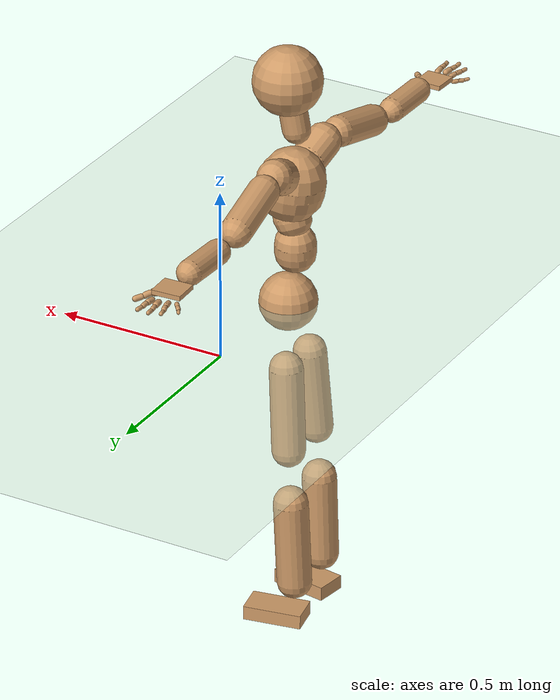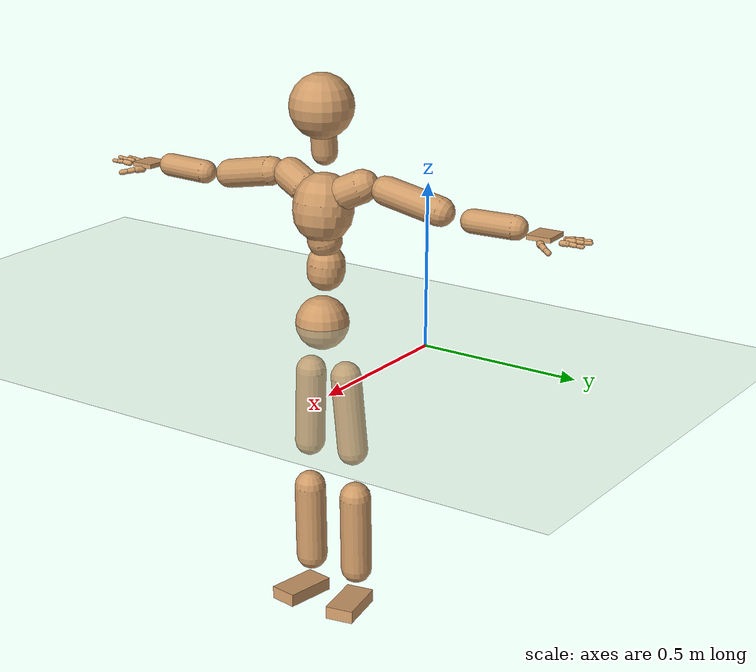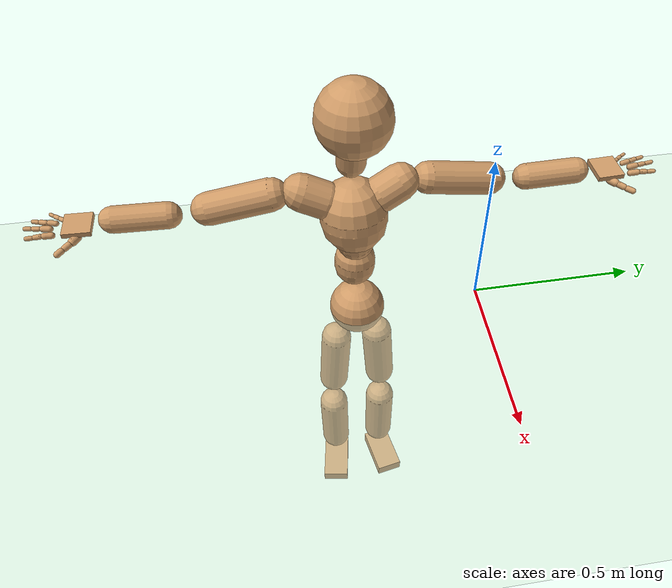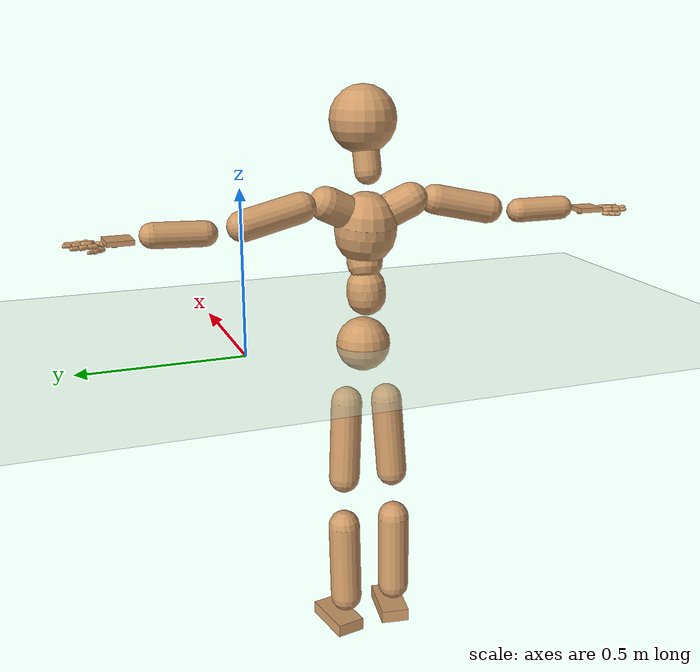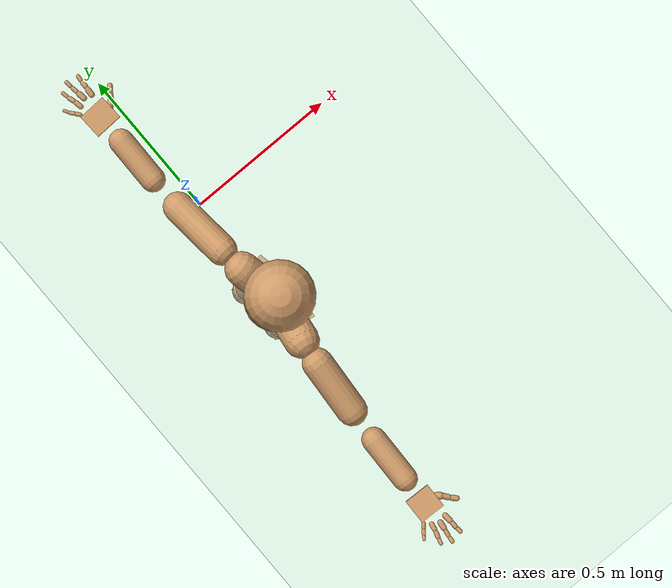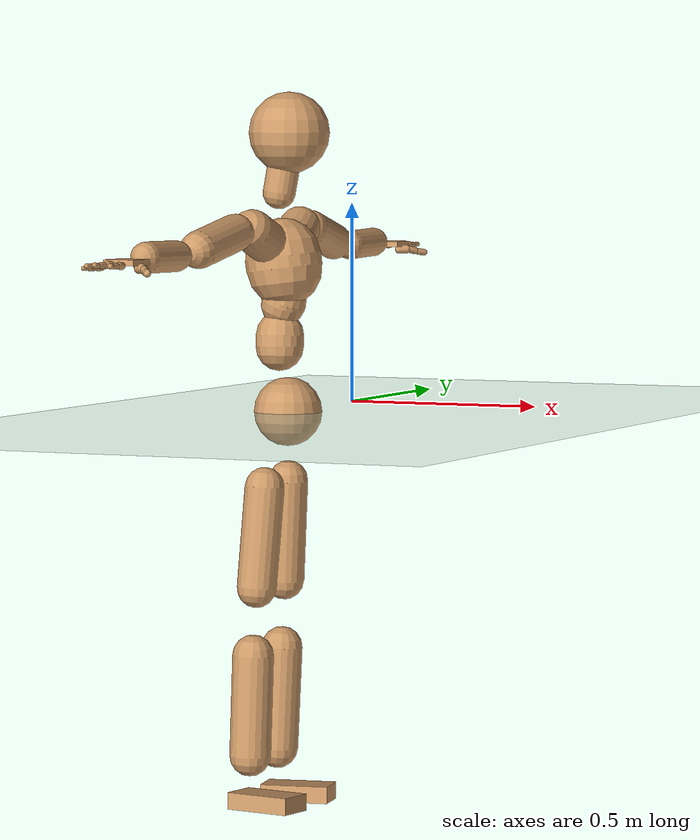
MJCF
<mujoco model="humanoid">
  <compiler coordinate="local" angle="radian"/>
  <default>
    <joint damping="0.0" armature="0.01" stiffness="0.0" limited="true"/>
    <geom conaffinity="1" condim="3" contype="7" margin="0.001" rgba="0.8 0.6 .4 1"/>
  </default>
  <asset>
    <texture type="skybox" builtin="gradient" rgb1=".4 .5 .6" rgb2="0 0 0" width="100" height="100"/>
    <texture builtin="flat" height="1278" mark="cross" markrgb="1 1 1" name="texgeom" random="0.01" rgb1="0.8 0.6 0.4" rgb2="0.8 0.6 0.4" type="cube" width="127"/>
    <texture builtin="checker" height="100" name="texplane" rgb1="0 0 0" rgb2="0.8 0.8 0.8" type="2d" width="100"/>
    <material name="MatPlane" reflectance="0.5" shininess="1" specular="1" texrepeat="60 60" texture="texplane"/>
    <material name="geom" texture="texgeom" texuniform="true"/>
  </asset>
  <worldbody>
    <light cutoff="100" diffuse="1 1 1" dir="-0 0 -1.3" directional="true" exponent="1" pos="0 0 1.3" specular=".1 .1 .1"/>
    <geom conaffinity="1" condim="3" name="floor" pos="0 0 0" rgba="0.8 0.9 0.8 1" size="100 100 .2" type="plane" material="MatPlane"/>
    <body name="Pelvis" pos="0.0001 -0.3766 -0.0013">
      <freejoint name="Pelvis"/>
      <geom type="sphere" contype="1" conaffinity="1" density="500" size="0.0842" pos="0.0000 0.0000 0.0000" name="Pelvis"/>
      <body name="L_Hip" pos="-0.026 0.0622 -0.0916">
        <joint name="L_Hip_x" type="hinge" pos="0 0 0" axis="1 0 0" stiffness="800" damping="80" armature="0.02" range="-180.0000 180.0000"/>
        <joint name="L_Hip_y" type="hinge" pos="0 0 0" axis="0 1 0" stiffness="800" damping="80" armature="0.02" range="-180.0000 180.0000"/>
        <joint name="L_Hip_z" type="hinge" pos="0 0 0" axis="0 0 1" stiffness="800" damping="80" armature="0.02" range="-180.0000 180.0000"/>
        <geom type="capsule" contype="1" conaffinity="1" density="500" fromto="-0.0057 0.0049 -0.0835 -0.0229 0.0194 -0.3339" size="0.0487" name="L_Hip"/>
        <body name="L_Knee" pos="-0.0286 0.0243 -0.4174">
          <joint name="L_Knee_x" type="hinge" pos="0 0 0" axis="1 0 0" stiffness="800" damping="80" armature="0.02" range="-180.0000 180.0000"/>
          <joint name="L_Knee_y" type="hinge" pos="0 0 0" axis="0 1 0" stiffness="800" damping="80" armature="0.02" range="-180.0000 180.0000"/>
          <joint name="L_Knee_z" type="hinge" pos="0 0 0" axis="0 0 1" stiffness="800" damping="80" armature="0.02" range="-180.0000 180.0000"/>
          <geom type="capsule" contype="1" conaffinity="1" density="500" fromto="-0.0037 -0.0008 -0.0845 -0.0149 -0.0032 -0.3381" size="0.0507" name="L_Knee"/>
          <body name="L_Ankle" pos="-0.0186 -0.0041 -0.4226">
            <joint name="L_Ankle_x" type="hinge" pos="0 0 0" axis="1 0 0" stiffness="800" damping="80" armature="0.02" range="-180.0000 180.0000"/>
            <joint name="L_Ankle_y" type="hinge" pos="0 0 0" axis="0 1 0" stiffness="800" damping="80" armature="0.02" range="-180.0000 180.0000"/>
            <joint name="L_Ankle_z" type="hinge" pos="0 0 0" axis="0 0 1" stiffness="800" damping="80" armature="0.02" range="-180.0000 180.0000"/>
            <geom type="box" contype="1" conaffinity="1" density="500" pos="0.0557 0.0104 -0.0244" size="0.0858 0.0456 0.0209" quat="0.9957 0.0000 0.0000 0.0921" name="L_Ankle"/>
            <body name="L_Toe" pos="0.1114 0.0208 -0.0488">
              <joint name="L_Toe_x" type="hinge" pos="0 0 0" axis="1 0 0" stiffness="500" damping="50" armature="0.02" range="-180.0000 180.0000"/>
              <joint name="L_Toe_y" type="hinge" pos="0 0 0" axis="0 1 0" stiffness="500" damping="50" armature="0.02" range="-180.0000 180.0000"/>
              <joint name="L_Toe_z" type="hinge" pos="0 0 0" axis="0 0 1" stiffness="500" damping="50" armature="0.02" range="-180.0000 180.0000"/>
              <geom type="box" contype="1" conaffinity="1" density="500" pos="0.0000 0.0000 0.0241" size="0.0009 0.0023 0.001" quat="0.9951 0.0000 0.0000 0.0990" name="L_Toe"/>
            </body>
          </body>
        </body>
      </body>
      <body name="R_Hip" pos="-0.0274 -0.0614 -0.099">
        <joint name="R_Hip_x" type="hinge" pos="0 0 0" axis="1 0 0" stiffness="800" damping="80" armature="0.02" range="-180.0000 180.0000"/>
        <joint name="R_Hip_y" type="hinge" pos="0 0 0" axis="0 1 0" stiffness="800" damping="80" armature="0.02" range="-180.0000 180.0000"/>
        <joint name="R_Hip_z" type="hinge" pos="0 0 0" axis="0 0 1" stiffness="800" damping="80" armature="0.02" range="-180.0000 180.0000"/>
        <geom type="capsule" contype="1" conaffinity="1" density="500" fromto="-0.0046 -0.0054 -0.0825 -0.0186 -0.0217 -0.3300" size="0.0484" name="R_Hip"/>
        <body name="R_Knee" pos="-0.0232 -0.0271 -0.4126">
          <joint name="R_Knee_x" type="hinge" pos="0 0 0" axis="1 0 0" stiffness="800" damping="80" armature="0.02" range="-180.0000 180.0000"/>
          <joint name="R_Knee_y" type="hinge" pos="0 0 0" axis="0 1 0" stiffness="800" damping="80" armature="0.02" range="-180.0000 180.0000"/>
          <joint name="R_Knee_z" type="hinge" pos="0 0 0" axis="0 0 1" stiffness="800" damping="80" armature="0.02" range="-180.0000 180.0000"/>
          <geom type="capsule" contype="1" conaffinity="1" density="500" fromto="-0.0028 -0.0001 -0.0828 -0.0112 -0.0003 -0.3311" size="0.0507" name="R_Knee"/>
          <body name="R_Ankle" pos="-0.014 -0.0004 -0.4138">
            <joint name="R_Ankle_x" type="hinge" pos="0 0 0" axis="1 0 0" stiffness="800" damping="80" armature="0.02" range="-180.0000 180.0000"/>
            <joint name="R_Ankle_y" type="hinge" pos="0 0 0" axis="0 1 0" stiffness="800" damping="80" armature="0.02" range="-180.0000 180.0000"/>
            <joint name="R_Ankle_z" type="hinge" pos="0 0 0" axis="0 0 1" stiffness="800" damping="80" armature="0.02" range="-180.0000 180.0000"/>
            <geom type="box" contype="1" conaffinity="1" density="500" pos="0.0524 -0.0083 -0.0264" size="0.0858 0.0456 0.0209" quat="0.9969 0.0000 0.0000 -0.0786" name="R_Ankle"/>
            <body name="R_Toe" pos="0.1048 -0.0166 -0.0528">
              <joint name="R_Toe_x" type="hinge" pos="0 0 0" axis="1 0 0" stiffness="500" damping="50" armature="0.02" range="-180.0000 180.0000"/>
              <joint name="R_Toe_y" type="hinge" pos="0 0 0" axis="0 1 0" stiffness="500" damping="50" armature="0.02" range="-180.0000 180.0000"/>
              <joint name="R_Toe_z" type="hinge" pos="0 0 0" axis="0 0 1" stiffness="500" damping="50" armature="0.02" range="-180.0000 180.0000"/>
              <geom type="box" contype="1" conaffinity="1" density="500" pos="0.0000 0.0000 0.0261" size="0.0009 0.0023 0.001" quat="0.9977 0.0000 0.0000 -0.0680" name="R_Toe"/>
            </body>
          </body>
        </body>
      </body>
      <body name="Torso" pos="-0.0213 -0.0045 0.104">
        <joint name="Torso_x" type="hinge" pos="0 0 0" axis="1 0 0" stiffness="1000" damping="100" armature="0.02" range="-180.0000 180.0000"/>
        <joint name="Torso_y" type="hinge" pos="0 0 0" axis="0 1 0" stiffness="1000" damping="100" armature="0.02" range="-180.0000 180.0000"/>
        <joint name="Torso_z" type="hinge" pos="0 0 0" axis="0 0 1" stiffness="1000" damping="100" armature="0.02" range="-180.0000 180.0000"/>
        <geom type="capsule" contype="1" conaffinity="1" density="500" fromto="-0.0006 0.0043 0.0822 -0.0004 0.0029 0.0548" size="0.0596" name="Torso"/>
        <body name="Spine" pos="-0.001 0.0072 0.1371">
          <joint name="Spine_x" type="hinge" pos="0 0 0" axis="1 0 0" stiffness="1000" damping="100" armature="0.02" range="-180.0000 180.0000"/>
          <joint name="Spine_y" type="hinge" pos="0 0 0" axis="0 1 0" stiffness="1000" damping="100" armature="0.02" range="-180.0000 180.0000"/>
          <joint name="Spine_z" type="hinge" pos="0 0 0" axis="0 0 1" stiffness="1000" damping="100" armature="0.02" range="-180.0000 180.0000"/>
          <geom type="capsule" contype="1" conaffinity="1" density="500" fromto="0.0125 -0.0021 0.0306 0.0084 -0.0014 0.0204" size="0.0543" name="Spine"/>
          <body name="Chest" pos="0.0209 -0.0035 0.051">
            <joint name="Chest_x" type="hinge" pos="0 0 0" axis="1 0 0" stiffness="1000" damping="100" armature="0.02" range="-180.0000 180.0000"/>
            <joint name="Chest_y" type="hinge" pos="0 0 0" axis="0 1 0" stiffness="1000" damping="100" armature="0.02" range="-180.0000 180.0000"/>
            <joint name="Chest_z" type="hinge" pos="0 0 0" axis="0 0 1" stiffness="1000" damping="100" armature="0.02" range="-180.0000 180.0000"/>
            <geom type="capsule" contype="1" conaffinity="1" density="500" fromto="-0.0109 -0.0015 0.0880 -0.0072 -0.0010 0.0587" size="0.0941" name="Chest"/>
            <body name="Neck" pos="-0.0259 -0.0053 0.2064">
              <joint name="Neck_x" type="hinge" pos="0 0 0" axis="1 0 0" stiffness="500" damping="50" armature="0.02" range="-180.0000 180.0000"/>
              <joint name="Neck_y" type="hinge" pos="0 0 0" axis="0 1 0" stiffness="500" damping="50" armature="0.02" range="-180.0000 180.0000"/>
              <joint name="Neck_z" type="hinge" pos="0 0 0" axis="0 0 1" stiffness="500" damping="50" armature="0.02" range="-180.0000 180.0000"/>
              <geom type="capsule" contype="1" conaffinity="1" density="500" fromto="0.0060 0.0017 0.0364 0.0242 0.0067 0.1458" size="0.0401" name="Neck"/>
              <body name="Head" pos="0.0302 0.0084 0.1822">
                <joint name="Head_x" type="hinge" pos="0 0 0" axis="1 0 0" stiffness="500" damping="50" armature="0.02" range="-180.0000 180.0000"/>
                <joint name="Head_y" type="hinge" pos="0 0 0" axis="0 1 0" stiffness="500" damping="50" armature="0.02" range="-180.0000 180.0000"/>
                <joint name="Head_z" type="hinge" pos="0 0 0" axis="0 0 1" stiffness="500" damping="50" armature="0.02" range="-180.0000 180.0000"/>
                <geom type="sphere" contype="1" conaffinity="1" density="500" size="0.0996" pos="0.0000 0.0000 0.0000" name="Head"/>
              </body>
            </body>
            <body name="L_Thorax" pos="-0.0113 0.0525 0.1193">
              <joint name="L_Thorax_x" type="hinge" pos="0 0 0" axis="1 0 0" stiffness="500" damping="50" armature="0.02" range="-180.0000 180.0000"/>
              <joint name="L_Thorax_y" type="hinge" pos="0 0 0" axis="0 1 0" stiffness="500" damping="50" armature="0.02" range="-180.0000 180.0000"/>
              <joint name="L_Thorax_z" type="hinge" pos="0 0 0" axis="0 0 1" stiffness="500" damping="50" armature="0.02" range="-180.0000 180.0000"/>
              <geom type="capsule" contype="1" conaffinity="1" density="500" fromto="-0.0040 0.0192 0.0091 -0.0160 0.0767 0.0363" size="0.0514" name="L_Thorax"/>
              <body name="L_Shoulder" pos="-0.02 0.0959 0.0453">
                <joint name="L_Shoulder_x" type="hinge" pos="0 0 0" axis="1 0 0" stiffness="500" damping="50" armature="0.02" range="-180.0000 180.0000"/>
                <joint name="L_Shoulder_y" type="hinge" pos="0 0 0" axis="0 1 0" stiffness="500" damping="50" armature="0.02" range="-180.0000 180.0000"/>
                <joint name="L_Shoulder_z" type="hinge" pos="0 0 0" axis="0 0 1" stiffness="500" damping="50" armature="0.02" range="-180.0000 180.0000"/>
                <geom type="capsule" contype="1" conaffinity="1" density="500" fromto="-0.0055 0.0595 -0.0132 -0.0222 0.2381 -0.0529" size="0.045" name="L_Shoulder"/>
                <body name="L_Elbow" pos="-0.0277 0.2977 -0.0662">
                  <joint name="L_Elbow_x" type="hinge" pos="0 0 0" axis="1 0 0" stiffness="500" damping="50" armature="0.02" range="-720.0000 720.0000"/>
                  <joint name="L_Elbow_y" type="hinge" pos="0 0 0" axis="0 1 0" stiffness="500" damping="50" armature="0.02" range="-720.0000 720.0000"/>
                  <joint name="L_Elbow_z" type="hinge" pos="0 0 0" axis="0 0 1" stiffness="500" damping="50" armature="0.02" range="-720.0000 720.0000"/>
                  <geom type="capsule" contype="1" conaffinity="1" density="500" fromto="0.0004 0.0483 0.0013 0.0017 0.1930 0.0054" size="0.0366" name="L_Elbow"/>
                  <body name="L_Wrist" pos="0.0022 0.2413 0.0067">
                    <joint name="L_Wrist_x" type="hinge" pos="0 0 0" axis="1 0 0" stiffness="300" damping="30" armature="0.02" range="-180.0000 180.0000"/>
                    <joint name="L_Wrist_y" type="hinge" pos="0 0 0" axis="0 1 0" stiffness="300" damping="30" armature="0.02" range="-180.0000 180.0000"/>
                    <joint name="L_Wrist_z" type="hinge" pos="0 0 0" axis="0 0 1" stiffness="300" damping="30" armature="0.02" range="-180.0000 180.0000"/>
                    <geom type="box" contype="1" conaffinity="1" density="500" pos="-0.0021 0.0449 -0.0089" size="0.0379 0.0427 0.0069" quat="0.7236 0.0000 0.0000 -0.6902" name="L_Wrist"/>
                    <body name="L_Index1" pos="0.0198 0.1052 -0.0157">
                      <joint name="L_Index1_x" type="hinge" pos="0 0 0" axis="1 0 0" stiffness="100" damping="10" armature="0.02" range="-180.0000 180.0000"/>
                      <joint name="L_Index1_y" type="hinge" pos="0 0 0" axis="0 1 0" stiffness="100" damping="10" armature="0.02" range="-180.0000 180.0000"/>
                      <joint name="L_Index1_z" type="hinge" pos="0 0 0" axis="0 0 1" stiffness="100" damping="10" armature="0.02" range="-180.0000 180.0000"/>
                      <geom type="capsule" contype="1" conaffinity="1" density="500" fromto="0.0005 0.0063 0.0006 0.0020 0.0252 0.0023" size="0.0087" name="L_Index1"/>
                      <body name="L_Index2" pos="0.0025 0.0316 0.0029">
                        <joint name="L_Index2_x" type="hinge" pos="0 0 0" axis="1 0 0" stiffness="100" damping="10" armature="0.02" range="-180.0000 180.0000"/>
                        <joint name="L_Index2_y" type="hinge" pos="0 0 0" axis="0 1 0" stiffness="100" damping="10" armature="0.02" range="-180.0000 180.0000"/>
                        <joint name="L_Index2_z" type="hinge" pos="0 0 0" axis="0 0 1" stiffness="100" damping="10" armature="0.02" range="-180.0000 180.0000"/>
                        <geom type="capsule" contype="1" conaffinity="1" density="500" fromto="0.0001 0.0045 -0.0003 0.0003 0.0179 -0.0011" size="0.0072" name="L_Index2"/>
                        <body name="L_Index3" pos="0.0004 0.0223 -0.0014">
                          <joint name="L_Index3_x" type="hinge" pos="0 0 0" axis="1 0 0" stiffness="100" damping="10" armature="0.02" range="-180.0000 180.0000"/>
                          <joint name="L_Index3_y" type="hinge" pos="0 0 0" axis="0 1 0" stiffness="100" damping="10" armature="0.02" range="-180.0000 180.0000"/>
                          <joint name="L_Index3_z" type="hinge" pos="0 0 0" axis="0 0 1" stiffness="100" damping="10" armature="0.02" range="-180.0000 180.0000"/>
                          <geom type="capsule" contype="1" conaffinity="1" density="500" fromto="0.0005 0.0049 0.0001 0.0019 0.0195 0.0005" size="0.0061" name="L_Index3"/>
                        </body>
                      </body>
                    </body>
                    <body name="L_Middle1" pos="-0.0026 0.1122 -0.0132">
                      <joint name="L_Middle1_x" type="hinge" pos="0 0 0" axis="1 0 0" stiffness="100" damping="10" armature="0.02" range="-180.0000 180.0000"/>
                      <joint name="L_Middle1_y" type="hinge" pos="0 0 0" axis="0 1 0" stiffness="100" damping="10" armature="0.02" range="-180.0000 180.0000"/>
                      <joint name="L_Middle1_z" type="hinge" pos="0 0 0" axis="0 0 1" stiffness="100" damping="10" armature="0.02" range="-180.0000 180.0000"/>
                      <geom type="capsule" contype="1" conaffinity="1" density="500" fromto="-0.0008 0.0060 0.0003 -0.0032 0.0238 0.0011" size="0.0088" name="L_Middle1"/>
                      <body name="L_Middle2" pos="-0.004 0.0298 0.0014">
                        <joint name="L_Middle2_x" type="hinge" pos="0 0 0" axis="1 0 0" stiffness="100" damping="10" armature="0.02" range="-180.0000 180.0000"/>
                        <joint name="L_Middle2_y" type="hinge" pos="0 0 0" axis="0 1 0" stiffness="100" damping="10" armature="0.02" range="-180.0000 180.0000"/>
                        <joint name="L_Middle2_z" type="hinge" pos="0 0 0" axis="0 0 1" stiffness="100" damping="10" armature="0.02" range="-180.0000 180.0000"/>
                        <geom type="capsule" contype="1" conaffinity="1" density="500" fromto="-0.0008 0.0047 -0.0001 -0.0031 0.0186 -0.0004" size="0.0066" name="L_Middle2"/>
                        <body name="L_Middle3" pos="-0.0039 0.0233 -0.0005">
                          <joint name="L_Middle3_x" type="hinge" pos="0 0 0" axis="1 0 0" stiffness="100" damping="10" armature="0.02" range="-180.0000 180.0000"/>
                          <joint name="L_Middle3_y" type="hinge" pos="0 0 0" axis="0 1 0" stiffness="100" damping="10" armature="0.02" range="-180.0000 180.0000"/>
                          <joint name="L_Middle3_z" type="hinge" pos="0 0 0" axis="0 0 1" stiffness="100" damping="10" armature="0.02" range="-180.0000 180.0000"/>
                          <geom type="capsule" contype="1" conaffinity="1" density="500" fromto="-0.0004 0.0051 0.0003 -0.0015 0.0202 0.0012" size="0.006" name="L_Middle3"/>
                        </body>
                      </body>
                    </body>
                    <body name="L_Pinky1" pos="-0.0402 0.0869 -0.0212">
                      <joint name="L_Pinky1_x" type="hinge" pos="0 0 0" axis="1 0 0" stiffness="100" damping="10" armature="0.02" range="-180.0000 180.0000"/>
                      <joint name="L_Pinky1_y" type="hinge" pos="0 0 0" axis="0 1 0" stiffness="100" damping="10" armature="0.02" range="-180.0000 180.0000"/>
                      <joint name="L_Pinky1_z" type="hinge" pos="0 0 0" axis="0 0 1" stiffness="100" damping="10" armature="0.02" range="-180.0000 180.0000"/>
                      <geom type="capsule" contype="1" conaffinity="1" density="500" fromto="-0.0023 0.0029 -0.0001 -0.0094 0.0116 -0.0003" size="0.0063" name="L_Pinky1"/>
                      <body name="L_Pinky2" pos="-0.0117 0.0145 -0.0003">
                        <joint name="L_Pinky2_x" type="hinge" pos="0 0 0" axis="1 0 0" stiffness="100" damping="10" armature="0.02" range="-180.0000 180.0000"/>
                        <joint name="L_Pinky2_y" type="hinge" pos="0 0 0" axis="0 1 0" stiffness="100" damping="10" armature="0.02" range="-180.0000 180.0000"/>
                        <joint name="L_Pinky2_z" type="hinge" pos="0 0 0" axis="0 0 1" stiffness="100" damping="10" armature="0.02" range="-180.0000 180.0000"/>
                        <geom type="capsule" contype="1" conaffinity="1" density="500" fromto="-0.0023 0.0029 -0.0001 -0.0092 0.0117 -0.0006" size="0.0061" name="L_Pinky2"/>
                        <body name="L_Pinky3" pos="-0.0115 0.0147 -0.0007">
                          <joint name="L_Pinky3_x" type="hinge" pos="0 0 0" axis="1 0 0" stiffness="100" damping="10" armature="0.02" range="-180.0000 180.0000"/>
                          <joint name="L_Pinky3_y" type="hinge" pos="0 0 0" axis="0 1 0" stiffness="100" damping="10" armature="0.02" range="-180.0000 180.0000"/>
                          <joint name="L_Pinky3_z" type="hinge" pos="0 0 0" axis="0 0 1" stiffness="100" damping="10" armature="0.02" range="-180.0000 180.0000"/>
                          <geom type="capsule" contype="1" conaffinity="1" density="500" fromto="-0.0019 0.0033 0.0003 -0.0076 0.0133 0.0010" size="0.0048" name="L_Pinky3"/>
                        </body>
                      </body>
                    </body>
                    <body name="L_Ring1" pos="-0.0247 0.1002 -0.0159">
                      <joint name="L_Ring1_x" type="hinge" pos="0 0 0" axis="1 0 0" stiffness="100" damping="10" armature="0.02" range="-180.0000 180.0000"/>
                      <joint name="L_Ring1_y" type="hinge" pos="0 0 0" axis="0 1 0" stiffness="100" damping="10" armature="0.02" range="-180.0000 180.0000"/>
                      <joint name="L_Ring1_z" type="hinge" pos="0 0 0" axis="0 0 1" stiffness="100" damping="10" armature="0.02" range="-180.0000 180.0000"/>
                      <geom type="capsule" contype="1" conaffinity="1" density="500" fromto="-0.0011 0.0054 0.0004 -0.0043 0.0218 0.0015" size="0.0076" name="L_Ring1"/>
                      <body name="L_Ring2" pos="-0.0053 0.0272 0.0019">
                        <joint name="L_Ring2_x" type="hinge" pos="0 0 0" axis="1 0 0" stiffness="100" damping="10" armature="0.02" range="-180.0000 180.0000"/>
                        <joint name="L_Ring2_y" type="hinge" pos="0 0 0" axis="0 1 0" stiffness="100" damping="10" armature="0.02" range="-180.0000 180.0000"/>
                        <joint name="L_Ring2_z" type="hinge" pos="0 0 0" axis="0 0 1" stiffness="100" damping="10" armature="0.02" range="-180.0000 180.0000"/>
                        <geom type="capsule" contype="1" conaffinity="1" density="500" fromto="-0.0014 0.0045 -0.0002 -0.0056 0.0178 -0.0007" size="0.0071" name="L_Ring2"/>
                        <body name="L_Ring3" pos="-0.007 0.0223 -0.0009">
                          <joint name="L_Ring3_x" type="hinge" pos="0 0 0" axis="1 0 0" stiffness="100" damping="10" armature="0.02" range="-180.0000 180.0000"/>
                          <joint name="L_Ring3_y" type="hinge" pos="0 0 0" axis="0 1 0" stiffness="100" damping="10" armature="0.02" range="-180.0000 180.0000"/>
                          <joint name="L_Ring3_z" type="hinge" pos="0 0 0" axis="0 0 1" stiffness="100" damping="10" armature="0.02" range="-180.0000 180.0000"/>
                          <geom type="capsule" contype="1" conaffinity="1" density="500" fromto="-0.0010 0.0049 0.0002 -0.0040 0.0194 0.0009" size="0.0056" name="L_Ring3"/>
                        </body>
                      </body>
                    </body>
                    <body name="L_Thumb1" pos="0.0264 0.0449 -0.0228">
                      <joint name="L_Thumb1_x" type="hinge" pos="0 0 0" axis="1 0 0" stiffness="100" damping="10" armature="0.02" range="-180.0000 180.0000"/>
                      <joint name="L_Thumb1_y" type="hinge" pos="0 0 0" axis="0 1 0" stiffness="100" damping="10" armature="0.02" range="-180.0000 180.0000"/>
                      <joint name="L_Thumb1_z" type="hinge" pos="0 0 0" axis="0 0 1" stiffness="100" damping="10" armature="0.02" range="-180.0000 180.0000"/>
                      <geom type="capsule" contype="1" conaffinity="1" density="500" fromto="0.0048 0.0035 0.0000 0.0191 0.0140 0.0001" size="0.0115" name="L_Thumb1"/>
                      <body name="L_Thumb2" pos="0.0238 0.0175 0.0001">
                        <joint name="L_Thumb2_x" type="hinge" pos="0 0 0" axis="1 0 0" stiffness="100" damping="10" armature="0.02" range="-180.0000 180.0000"/>
                        <joint name="L_Thumb2_y" type="hinge" pos="0 0 0" axis="0 1 0" stiffness="100" damping="10" armature="0.02" range="-180.0000 180.0000"/>
                        <joint name="L_Thumb2_z" type="hinge" pos="0 0 0" axis="0 0 1" stiffness="100" damping="10" armature="0.02" range="-180.0000 180.0000"/>
                        <geom type="capsule" contype="1" conaffinity="1" density="500" fromto="0.0029 0.0041 -0.0012 0.0117 0.0165 -0.0047" size="0.009" name="L_Thumb2"/>
                        <body name="L_Thumb3" pos="0.0146 0.0206 -0.0058">
                          <joint name="L_Thumb3_x" type="hinge" pos="0 0 0" axis="1 0 0" stiffness="100" damping="10" armature="0.02" range="-180.0000 180.0000"/>
                          <joint name="L_Thumb3_y" type="hinge" pos="0 0 0" axis="0 1 0" stiffness="100" damping="10" armature="0.02" range="-180.0000 180.0000"/>
                          <joint name="L_Thumb3_z" type="hinge" pos="0 0 0" axis="0 0 1" stiffness="100" damping="10" armature="0.02" range="-180.0000 180.0000"/>
                          <geom type="capsule" contype="1" conaffinity="1" density="500" fromto="0.0033 0.0045 -0.0008 0.0133 0.0181 -0.0031" size="0.0084" name="L_Thumb3"/>
                        </body>
                      </body>
                    </body>
                  </body>
                </body>
              </body>
            </body>
            <body name="R_Thorax" pos="-0.0172 -0.0548 0.1145">
              <joint name="R_Thorax_x" type="hinge" pos="0 0 0" axis="1 0 0" stiffness="500" damping="50" armature="0.02" range="-180.0000 180.0000"/>
              <joint name="R_Thorax_y" type="hinge" pos="0 0 0" axis="0 1 0" stiffness="500" damping="50" armature="0.02" range="-180.0000 180.0000"/>
              <joint name="R_Thorax_z" type="hinge" pos="0 0 0" axis="0 0 1" stiffness="500" damping="50" armature="0.02" range="-180.0000 180.0000"/>
              <geom type="capsule" contype="1" conaffinity="1" density="500" fromto="-0.0028 -0.0207 0.0096 -0.0113 -0.0829 0.0386" size="0.0522" name="R_Thorax"/>
              <body name="R_Shoulder" pos="-0.0141 -0.1037 0.0482">
                <joint name="R_Shoulder_x" type="hinge" pos="0 0 0" axis="1 0 0" stiffness="500" damping="50" armature="0.02" range="-180.0000 180.0000"/>
                <joint name="R_Shoulder_y" type="hinge" pos="0 0 0" axis="0 1 0" stiffness="500" damping="50" armature="0.02" range="-180.0000 180.0000"/>
                <joint name="R_Shoulder_z" type="hinge" pos="0 0 0" axis="0 0 1" stiffness="500" damping="50" armature="0.02" range="-180.0000 180.0000"/>
                <geom type="capsule" contype="1" conaffinity="1" density="500" fromto="-0.0040 -0.0573 -0.0121 -0.0160 -0.2292 -0.0483" size="0.0454" name="R_Shoulder"/>
                <body name="R_Elbow" pos="-0.02 -0.2865 -0.0603">
                  <joint name="R_Elbow_x" type="hinge" pos="0 0 0" axis="1 0 0" stiffness="500" damping="50" armature="0.02" range="-720.0000 720.0000"/>
                  <joint name="R_Elbow_y" type="hinge" pos="0 0 0" axis="0 1 0" stiffness="500" damping="50" armature="0.02" range="-720.0000 720.0000"/>
                  <joint name="R_Elbow_z" type="hinge" pos="0 0 0" axis="0 0 1" stiffness="500" damping="50" armature="0.02" range="-720.0000 720.0000"/>
                  <geom type="capsule" contype="1" conaffinity="1" density="500" fromto="-0.0014 -0.0485 0.0004 -0.0055 -0.1940 0.0016" size="0.0368" name="R_Elbow"/>
                  <body name="R_Wrist" pos="-0.0069 -0.2424 0.002">
                    <joint name="R_Wrist_x" type="hinge" pos="0 0 0" axis="1 0 0" stiffness="300" damping="30" armature="0.02" range="-180.0000 180.0000"/>
                    <joint name="R_Wrist_y" type="hinge" pos="0 0 0" axis="0 1 0" stiffness="300" damping="30" armature="0.02" range="-180.0000 180.0000"/>
                    <joint name="R_Wrist_z" type="hinge" pos="0 0 0" axis="0 0 1" stiffness="300" damping="30" armature="0.02" range="-180.0000 180.0000"/>
                    <geom type="box" contype="1" conaffinity="1" density="500" pos="-0.0014 -0.0443 -0.0085" size="0.0379 0.0399 0.0071" quat="0.7183 0.0000 0.0000 0.6958" name="R_Wrist"/>
                    <body name="R_Index1" pos="0.0212 -0.1039 -0.015">
                      <joint name="R_Index1_x" type="hinge" pos="0 0 0" axis="1 0 0" stiffness="100" damping="10" armature="0.02" range="-180.0000 180.0000"/>
                      <joint name="R_Index1_y" type="hinge" pos="0 0 0" axis="0 1 0" stiffness="100" damping="10" armature="0.02" range="-180.0000 180.0000"/>
                      <joint name="R_Index1_z" type="hinge" pos="0 0 0" axis="0 0 1" stiffness="100" damping="10" armature="0.02" range="-180.0000 180.0000"/>
                      <geom type="capsule" contype="1" conaffinity="1" density="500" fromto="0.0005 -0.0063 0.0006 0.0020 -0.0252 0.0023" size="0.0087" name="R_Index1"/>
                      <body name="R_Index2" pos="0.0025 -0.0316 0.0029">
                        <joint name="R_Index2_x" type="hinge" pos="0 0 0" axis="1 0 0" stiffness="100" damping="10" armature="0.02" range="-180.0000 180.0000"/>
                        <joint name="R_Index2_y" type="hinge" pos="0 0 0" axis="0 1 0" stiffness="100" damping="10" armature="0.02" range="-180.0000 180.0000"/>
                        <joint name="R_Index2_z" type="hinge" pos="0 0 0" axis="0 0 1" stiffness="100" damping="10" armature="0.02" range="-180.0000 180.0000"/>
                        <geom type="capsule" contype="1" conaffinity="1" density="500" fromto="0.0001 -0.0045 -0.0003 0.0003 -0.0179 -0.0011" size="0.0072" name="R_Index2"/>
                        <body name="R_Index3" pos="0.0004 -0.0223 -0.0014">
                          <joint name="R_Index3_x" type="hinge" pos="0 0 0" axis="1 0 0" stiffness="100" damping="10" armature="0.02" range="-180.0000 180.0000"/>
                          <joint name="R_Index3_y" type="hinge" pos="0 0 0" axis="0 1 0" stiffness="100" damping="10" armature="0.02" range="-180.0000 180.0000"/>
                          <joint name="R_Index3_z" type="hinge" pos="0 0 0" axis="0 0 1" stiffness="100" damping="10" armature="0.02" range="-180.0000 180.0000"/>
                          <geom type="capsule" contype="1" conaffinity="1" density="500" fromto="0.0005 -0.0041 0.0001 0.0019 -0.0163 0.0005" size="0.0064" name="R_Index3"/>
                        </body>
                      </body>
                    </body>
                    <body name="R_Middle1" pos="-0.0011 -0.1109 -0.0126">
                      <joint name="R_Middle1_x" type="hinge" pos="0 0 0" axis="1 0 0" stiffness="100" damping="10" armature="0.02" range="-180.0000 180.0000"/>
                      <joint name="R_Middle1_y" type="hinge" pos="0 0 0" axis="0 1 0" stiffness="100" damping="10" armature="0.02" range="-180.0000 180.0000"/>
                      <joint name="R_Middle1_z" type="hinge" pos="0 0 0" axis="0 0 1" stiffness="100" damping="10" armature="0.02" range="-180.0000 180.0000"/>
                      <geom type="capsule" contype="1" conaffinity="1" density="500" fromto="-0.0008 -0.0060 0.0003 -0.0032 -0.0238 0.0011" size="0.0088" name="R_Middle1"/>
                      <body name="R_Middle2" pos="-0.004 -0.0298 0.0014">
                        <joint name="R_Middle2_x" type="hinge" pos="0 0 0" axis="1 0 0" stiffness="100" damping="10" armature="0.02" range="-180.0000 180.0000"/>
                        <joint name="R_Middle2_y" type="hinge" pos="0 0 0" axis="0 1 0" stiffness="100" damping="10" armature="0.02" range="-180.0000 180.0000"/>
                        <joint name="R_Middle2_z" type="hinge" pos="0 0 0" axis="0 0 1" stiffness="100" damping="10" armature="0.02" range="-180.0000 180.0000"/>
                        <geom type="capsule" contype="1" conaffinity="1" density="500" fromto="-0.0008 -0.0047 -0.0001 -0.0031 -0.0186 -0.0004" size="0.0066" name="R_Middle2"/>
                        <body name="R_Middle3" pos="-0.0039 -0.0233 -0.0005">
                          <joint name="R_Middle3_x" type="hinge" pos="0 0 0" axis="1 0 0" stiffness="100" damping="10" armature="0.02" range="-180.0000 180.0000"/>
                          <joint name="R_Middle3_y" type="hinge" pos="0 0 0" axis="0 1 0" stiffness="100" damping="10" armature="0.02" range="-180.0000 180.0000"/>
                          <joint name="R_Middle3_z" type="hinge" pos="0 0 0" axis="0 0 1" stiffness="100" damping="10" armature="0.02" range="-180.0000 180.0000"/>
                          <geom type="capsule" contype="1" conaffinity="1" density="500" fromto="-0.0004 -0.0043 0.0003 -0.0015 -0.0170 0.0012" size="0.0062" name="R_Middle3"/>
                        </body>
                      </body>
                    </body>
                    <body name="R_Pinky1" pos="-0.0388 -0.0856 -0.0205">
                      <joint name="R_Pinky1_x" type="hinge" pos="0 0 0" axis="1 0 0" stiffness="100" damping="10" armature="0.02" range="-180.0000 180.0000"/>
                      <joint name="R_Pinky1_y" type="hinge" pos="0 0 0" axis="0 1 0" stiffness="100" damping="10" armature="0.02" range="-180.0000 180.0000"/>
                      <joint name="R_Pinky1_z" type="hinge" pos="0 0 0" axis="0 0 1" stiffness="100" damping="10" armature="0.02" range="-180.0000 180.0000"/>
                      <geom type="capsule" contype="1" conaffinity="1" density="500" fromto="-0.0023 -0.0029 -0.0001 -0.0094 -0.0116 -0.0003" size="0.0063" name="R_Pinky1"/>
                      <body name="R_Pinky2" pos="-0.0117 -0.0145 -0.0003">
                        <joint name="R_Pinky2_x" type="hinge" pos="0 0 0" axis="1 0 0" stiffness="100" damping="10" armature="0.02" range="-180.0000 180.0000"/>
                        <joint name="R_Pinky2_y" type="hinge" pos="0 0 0" axis="0 1 0" stiffness="100" damping="10" armature="0.02" range="-180.0000 180.0000"/>
                        <joint name="R_Pinky2_z" type="hinge" pos="0 0 0" axis="0 0 1" stiffness="100" damping="10" armature="0.02" range="-180.0000 180.0000"/>
                        <geom type="capsule" contype="1" conaffinity="1" density="500" fromto="-0.0023 -0.0029 -0.0001 -0.0092 -0.0117 -0.0006" size="0.0061" name="R_Pinky2"/>
                        <body name="R_Pinky3" pos="-0.0115 -0.0147 -0.0007">
                          <joint name="R_Pinky3_x" type="hinge" pos="0 0 0" axis="1 0 0" stiffness="100" damping="10" armature="0.02" range="-180.0000 180.0000"/>
                          <joint name="R_Pinky3_y" type="hinge" pos="0 0 0" axis="0 1 0" stiffness="100" damping="10" armature="0.02" range="-180.0000 180.0000"/>
                          <joint name="R_Pinky3_z" type="hinge" pos="0 0 0" axis="0 0 1" stiffness="100" damping="10" armature="0.02" range="-180.0000 180.0000"/>
                          <geom type="capsule" contype="1" conaffinity="1" density="500" fromto="-0.0019 -0.0025 0.0003 -0.0076 -0.0101 0.0010" size="0.005" name="R_Pinky3"/>
                        </body>
                      </body>
                    </body>
                    <body name="R_Ring1" pos="-0.0233 -0.0989 -0.0153">
                      <joint name="R_Ring1_x" type="hinge" pos="0 0 0" axis="1 0 0" stiffness="100" damping="10" armature="0.02" range="-180.0000 180.0000"/>
                      <joint name="R_Ring1_y" type="hinge" pos="0 0 0" axis="0 1 0" stiffness="100" damping="10" armature="0.02" range="-180.0000 180.0000"/>
                      <joint name="R_Ring1_z" type="hinge" pos="0 0 0" axis="0 0 1" stiffness="100" damping="10" armature="0.02" range="-180.0000 180.0000"/>
                      <geom type="capsule" contype="1" conaffinity="1" density="500" fromto="-0.0011 -0.0054 0.0004 -0.0043 -0.0218 0.0015" size="0.0076" name="R_Ring1"/>
                      <body name="R_Ring2" pos="-0.0053 -0.0272 0.0019">
                        <joint name="R_Ring2_x" type="hinge" pos="0 0 0" axis="1 0 0" stiffness="100" damping="10" armature="0.02" range="-180.0000 180.0000"/>
                        <joint name="R_Ring2_y" type="hinge" pos="0 0 0" axis="0 1 0" stiffness="100" damping="10" armature="0.02" range="-180.0000 180.0000"/>
                        <joint name="R_Ring2_z" type="hinge" pos="0 0 0" axis="0 0 1" stiffness="100" damping="10" armature="0.02" range="-180.0000 180.0000"/>
                        <geom type="capsule" contype="1" conaffinity="1" density="500" fromto="-0.0014 -0.0045 -0.0002 -0.0056 -0.0178 -0.0007" size="0.0071" name="R_Ring2"/>
                        <body name="R_Ring3" pos="-0.007 -0.0223 -0.0009">
                          <joint name="R_Ring3_x" type="hinge" pos="0 0 0" axis="1 0 0" stiffness="100" damping="10" armature="0.02" range="-180.0000 180.0000"/>
                          <joint name="R_Ring3_y" type="hinge" pos="0 0 0" axis="0 1 0" stiffness="100" damping="10" armature="0.02" range="-180.0000 180.0000"/>
                          <joint name="R_Ring3_z" type="hinge" pos="0 0 0" axis="0 0 1" stiffness="100" damping="10" armature="0.02" range="-180.0000 180.0000"/>
                          <geom type="capsule" contype="1" conaffinity="1" density="500" fromto="-0.0010 -0.0041 0.0002 -0.0040 -0.0162 0.0009" size="0.0059" name="R_Ring3"/>
                        </body>
                      </body>
                    </body>
                    <body name="R_Thumb1" pos="0.0278 -0.0435 -0.0221">
                      <joint name="R_Thumb1_x" type="hinge" pos="0 0 0" axis="1 0 0" stiffness="100" damping="10" armature="0.02" range="-180.0000 180.0000"/>
                      <joint name="R_Thumb1_y" type="hinge" pos="0 0 0" axis="0 1 0" stiffness="100" damping="10" armature="0.02" range="-180.0000 180.0000"/>
                      <joint name="R_Thumb1_z" type="hinge" pos="0 0 0" axis="0 0 1" stiffness="100" damping="10" armature="0.02" range="-180.0000 180.0000"/>
                      <geom type="capsule" contype="1" conaffinity="1" density="500" fromto="0.0048 -0.0035 0.0000 0.0191 -0.0140 0.0001" size="0.0115" name="R_Thumb1"/>
                      <body name="R_Thumb2" pos="0.0238 -0.0175 0.0001">
                        <joint name="R_Thumb2_x" type="hinge" pos="0 0 0" axis="1 0 0" stiffness="100" damping="10" armature="0.02" range="-180.0000 180.0000"/>
                        <joint name="R_Thumb2_y" type="hinge" pos="0 0 0" axis="0 1 0" stiffness="100" damping="10" armature="0.02" range="-180.0000 180.0000"/>
                        <joint name="R_Thumb2_z" type="hinge" pos="0 0 0" axis="0 0 1" stiffness="100" damping="10" armature="0.02" range="-180.0000 180.0000"/>
                        <geom type="capsule" contype="1" conaffinity="1" density="500" fromto="0.0029 -0.0041 -0.0012 0.0117 -0.0165 -0.0047" size="0.009" name="R_Thumb2"/>
                        <body name="R_Thumb3" pos="0.0146 -0.0206 -0.0058">
                          <joint name="R_Thumb3_x" type="hinge" pos="0 0 0" axis="1 0 0" stiffness="100" damping="10" armature="0.02" range="-180.0000 180.0000"/>
                          <joint name="R_Thumb3_y" type="hinge" pos="0 0 0" axis="0 1 0" stiffness="100" damping="10" armature="0.02" range="-180.0000 180.0000"/>
                          <joint name="R_Thumb3_z" type="hinge" pos="0 0 0" axis="0 0 1" stiffness="100" damping="10" armature="0.02" range="-180.0000 180.0000"/>
                          <geom type="capsule" contype="1" conaffinity="1" density="500" fromto="0.0033 -0.0037 -0.0008 0.0133 -0.0149 -0.0031" size="0.0087" name="R_Thumb3"/>
                        </body>
                      </body>
                    </body>
                  </body>
                </body>
              </body>
            </body>
          </body>
        </body>
      </body>
    </body>
  </worldbody>
  <actuator>
    <motor name="L_Hip_x" joint="L_Hip_x" gear="500"/>
    <motor name="L_Hip_y" joint="L_Hip_y" gear="500"/>
    <motor name="L_Hip_z" joint="L_Hip_z" gear="500"/>
    <motor name="L_Knee_x" joint="L_Knee_x" gear="500"/>
    <motor name="L_Knee_y" joint="L_Knee_y" gear="500"/>
    <motor name="L_Knee_z" joint="L_Knee_z" gear="500"/>
    <motor name="L_Ankle_x" joint="L_Ankle_x" gear="500"/>
    <motor name="L_Ankle_y" joint="L_Ankle_y" gear="500"/>
    <motor name="L_Ankle_z" joint="L_Ankle_z" gear="500"/>
    <motor name="L_Toe_x" joint="L_Toe_x" gear="500"/>
    <motor name="L_Toe_y" joint="L_Toe_y" gear="500"/>
    <motor name="L_Toe_z" joint="L_Toe_z" gear="500"/>
    <motor name="R_Hip_x" joint="R_Hip_x" gear="500"/>
    <motor name="R_Hip_y" joint="R_Hip_y" gear="500"/>
    <motor name="R_Hip_z" joint="R_Hip_z" gear="500"/>
    <motor name="R_Knee_x" joint="R_Knee_x" gear="500"/>
    <motor name="R_Knee_y" joint="R_Knee_y" gear="500"/>
    <motor name="R_Knee_z" joint="R_Knee_z" gear="500"/>
    <motor name="R_Ankle_x" joint="R_Ankle_x" gear="500"/>
    <motor name="R_Ankle_y" joint="R_Ankle_y" gear="500"/>
    <motor name="R_Ankle_z" joint="R_Ankle_z" gear="500"/>
    <motor name="R_Toe_x" joint="R_Toe_x" gear="500"/>
    <motor name="R_Toe_y" joint="R_Toe_y" gear="500"/>
    <motor name="R_Toe_z" joint="R_Toe_z" gear="500"/>
    <motor name="Torso_x" joint="Torso_x" gear="500"/>
    <motor name="Torso_y" joint="Torso_y" gear="500"/>
    <motor name="Torso_z" joint="Torso_z" gear="500"/>
    <motor name="Spine_x" joint="Spine_x" gear="500"/>
    <motor name="Spine_y" joint="Spine_y" gear="500"/>
    <motor name="Spine_z" joint="Spine_z" gear="500"/>
    <motor name="Chest_x" joint="Chest_x" gear="500"/>
    <motor name="Chest_y" joint="Chest_y" gear="500"/>
    <motor name="Chest_z" joint="Chest_z" gear="500"/>
    <motor name="Neck_x" joint="Neck_x" gear="500"/>
    <motor name="Neck_y" joint="Neck_y" gear="500"/>
    <motor name="Neck_z" joint="Neck_z" gear="500"/>
    <motor name="Head_x" joint="Head_x" gear="500"/>
    <motor name="Head_y" joint="Head_y" gear="500"/>
    <motor name="Head_z" joint="Head_z" gear="500"/>
    <motor name="L_Thorax_x" joint="L_Thorax_x" gear="500"/>
    <motor name="L_Thorax_y" joint="L_Thorax_y" gear="500"/>
    <motor name="L_Thorax_z" joint="L_Thorax_z" gear="500"/>
    <motor name="L_Shoulder_x" joint="L_Shoulder_x" gear="500"/>
    <motor name="L_Shoulder_y" joint="L_Shoulder_y" gear="500"/>
    <motor name="L_Shoulder_z" joint="L_Shoulder_z" gear="500"/>
    <motor name="L_Elbow_x" joint="L_Elbow_x" gear="500"/>
    <motor name="L_Elbow_y" joint="L_Elbow_y" gear="500"/>
    <motor name="L_Elbow_z" joint="L_Elbow_z" gear="500"/>
    <motor name="L_Wrist_x" joint="L_Wrist_x" gear="500"/>
    <motor name="L_Wrist_y" joint="L_Wrist_y" gear="500"/>
    <motor name="L_Wrist_z" joint="L_Wrist_z" gear="500"/>
    <motor name="L_Index1_x" joint="L_Index1_x" gear="500"/>
    <motor name="L_Index1_y" joint="L_Index1_y" gear="500"/>
    <motor name="L_Index1_z" joint="L_Index1_z" gear="500"/>
    <motor name="L_Index2_x" joint="L_Index2_x" gear="500"/>
    <motor name="L_Index2_y" joint="L_Index2_y" gear="500"/>
    <motor name="L_Index2_z" joint="L_Index2_z" gear="500"/>
    <motor name="L_Index3_x" joint="L_Index3_x" gear="500"/>
    <motor name="L_Index3_y" joint="L_Index3_y" gear="500"/>
    <motor name="L_Index3_z" joint="L_Index3_z" gear="500"/>
    <motor name="L_Middle1_x" joint="L_Middle1_x" gear="500"/>
    <motor name="L_Middle1_y" joint="L_Middle1_y" gear="500"/>
    <motor name="L_Middle1_z" joint="L_Middle1_z" gear="500"/>
    <motor name="L_Middle2_x" joint="L_Middle2_x" gear="500"/>
    <motor name="L_Middle2_y" joint="L_Middle2_y" gear="500"/>
    <motor name="L_Middle2_z" joint="L_Middle2_z" gear="500"/>
    <motor name="L_Middle3_x" joint="L_Middle3_x" gear="500"/>
    <motor name="L_Middle3_y" joint="L_Middle3_y" gear="500"/>
    <motor name="L_Middle3_z" joint="L_Middle3_z" gear="500"/>
    <motor name="L_Pinky1_x" joint="L_Pinky1_x" gear="500"/>
    <motor name="L_Pinky1_y" joint="L_Pinky1_y" gear="500"/>
    <motor name="L_Pinky1_z" joint="L_Pinky1_z" gear="500"/>
    <motor name="L_Pinky2_x" joint="L_Pinky2_x" gear="500"/>
    <motor name="L_Pinky2_y" joint="L_Pinky2_y" gear="500"/>
    <motor name="L_Pinky2_z" joint="L_Pinky2_z" gear="500"/>
    <motor name="L_Pinky3_x" joint="L_Pinky3_x" gear="500"/>
    <motor name="L_Pinky3_y" joint="L_Pinky3_y" gear="500"/>
    <motor name="L_Pinky3_z" joint="L_Pinky3_z" gear="500"/>
    <motor name="L_Ring1_x" joint="L_Ring1_x" gear="500"/>
    <motor name="L_Ring1_y" joint="L_Ring1_y" gear="500"/>
    <motor name="L_Ring1_z" joint="L_Ring1_z" gear="500"/>
    <motor name="L_Ring2_x" joint="L_Ring2_x" gear="500"/>
    <motor name="L_Ring2_y" joint="L_Ring2_y" gear="500"/>
    <motor name="L_Ring2_z" joint="L_Ring2_z" gear="500"/>
    <motor name="L_Ring3_x" joint="L_Ring3_x" gear="500"/>
    <motor name="L_Ring3_y" joint="L_Ring3_y" gear="500"/>
    <motor name="L_Ring3_z" joint="L_Ring3_z" gear="500"/>
    <motor name="L_Thumb1_x" joint="L_Thumb1_x" gear="500"/>
    <motor name="L_Thumb1_y" joint="L_Thumb1_y" gear="500"/>
    <motor name="L_Thumb1_z" joint="L_Thumb1_z" gear="500"/>
    <motor name="L_Thumb2_x" joint="L_Thumb2_x" gear="500"/>
    <motor name="L_Thumb2_y" joint="L_Thumb2_y" gear="500"/>
    <motor name="L_Thumb2_z" joint="L_Thumb2_z" gear="500"/>
    <motor name="L_Thumb3_x" joint="L_Thumb3_x" gear="500"/>
    <motor name="L_Thumb3_y" joint="L_Thumb3_y" gear="500"/>
    <motor name="L_Thumb3_z" joint="L_Thumb3_z" gear="500"/>
    <motor name="R_Thorax_x" joint="R_Thorax_x" gear="500"/>
    <motor name="R_Thorax_y" joint="R_Thorax_y" gear="500"/>
    <motor name="R_Thorax_z" joint="R_Thorax_z" gear="500"/>
    <motor name="R_Shoulder_x" joint="R_Shoulder_x" gear="500"/>
    <motor name="R_Shoulder_y" joint="R_Shoulder_y" gear="500"/>
    <motor name="R_Shoulder_z" joint="R_Shoulder_z" gear="500"/>
    <motor name="R_Elbow_x" joint="R_Elbow_x" gear="500"/>
    <motor name="R_Elbow_y" joint="R_Elbow_y" gear="500"/>
    <motor name="R_Elbow_z" joint="R_Elbow_z" gear="500"/>
    <motor name="R_Wrist_x" joint="R_Wrist_x" gear="500"/>
    <motor name="R_Wrist_y" joint="R_Wrist_y" gear="500"/>
    <motor name="R_Wrist_z" joint="R_Wrist_z" gear="500"/>
    <motor name="R_Index1_x" joint="R_Index1_x" gear="500"/>
    <motor name="R_Index1_y" joint="R_Index1_y" gear="500"/>
    <motor name="R_Index1_z" joint="R_Index1_z" gear="500"/>
    <motor name="R_Index2_x" joint="R_Index2_x" gear="500"/>
    <motor name="R_Index2_y" joint="R_Index2_y" gear="500"/>
    <motor name="R_Index2_z" joint="R_Index2_z" gear="500"/>
    <motor name="R_Index3_x" joint="R_Index3_x" gear="500"/>
    <motor name="R_Index3_y" joint="R_Index3_y" gear="500"/>
    <motor name="R_Index3_z" joint="R_Index3_z" gear="500"/>
    <motor name="R_Middle1_x" joint="R_Middle1_x" gear="500"/>
    <motor name="R_Middle1_y" joint="R_Middle1_y" gear="500"/>
    <motor name="R_Middle1_z" joint="R_Middle1_z" gear="500"/>
    <motor name="R_Middle2_x" joint="R_Middle2_x" gear="500"/>
    <motor name="R_Middle2_y" joint="R_Middle2_y" gear="500"/>
    <motor name="R_Middle2_z" joint="R_Middle2_z" gear="500"/>
    <motor name="R_Middle3_x" joint="R_Middle3_x" gear="500"/>
    <motor name="R_Middle3_y" joint="R_Middle3_y" gear="500"/>
    <motor name="R_Middle3_z" joint="R_Middle3_z" gear="500"/>
    <motor name="R_Pinky1_x" joint="R_Pinky1_x" gear="500"/>
    <motor name="R_Pinky1_y" joint="R_Pinky1_y" gear="500"/>
    <motor name="R_Pinky1_z" joint="R_Pinky1_z" gear="500"/>
    <motor name="R_Pinky2_x" joint="R_Pinky2_x" gear="500"/>
    <motor name="R_Pinky2_y" joint="R_Pinky2_y" gear="500"/>
    <motor name="R_Pinky2_z" joint="R_Pinky2_z" gear="500"/>
    <motor name="R_Pinky3_x" joint="R_Pinky3_x" gear="500"/>
    <motor name="R_Pinky3_y" joint="R_Pinky3_y" gear="500"/>
    <motor name="R_Pinky3_z" joint="R_Pinky3_z" gear="500"/>
    <motor name="R_Ring1_x" joint="R_Ring1_x" gear="500"/>
    <motor name="R_Ring1_y" joint="R_Ring1_y" gear="500"/>
    <motor name="R_Ring1_z" joint="R_Ring1_z" gear="500"/>
    <motor name="R_Ring2_x" joint="R_Ring2_x" gear="500"/>
    <motor name="R_Ring2_y" joint="R_Ring2_y" gear="500"/>
    <motor name="R_Ring2_z" joint="R_Ring2_z" gear="500"/>
    <motor name="R_Ring3_x" joint="R_Ring3_x" gear="500"/>
    <motor name="R_Ring3_y" joint="R_Ring3_y" gear="500"/>
    <motor name="R_Ring3_z" joint="R_Ring3_z" gear="500"/>
    <motor name="R_Thumb1_x" joint="R_Thumb1_x" gear="500"/>
    <motor name="R_Thumb1_y" joint="R_Thumb1_y" gear="500"/>
    <motor name="R_Thumb1_z" joint="R_Thumb1_z" gear="500"/>
    <motor name="R_Thumb2_x" joint="R_Thumb2_x" gear="500"/>
    <motor name="R_Thumb2_y" joint="R_Thumb2_y" gear="500"/>
    <motor name="R_Thumb2_z" joint="R_Thumb2_z" gear="500"/>
    <motor name="R_Thumb3_x" joint="R_Thumb3_x" gear="500"/>
    <motor name="R_Thumb3_y" joint="R_Thumb3_y" gear="500"/>
    <motor name="R_Thumb3_z" joint="R_Thumb3_z" gear="500"/>
  </actuator>
  <contact>
    <exclude body1="Torso" body2="Chest"/>
    <exclude body1="Head" body2="Chest"/>
    <exclude body1="R_Knee" body2="R_Toe"/>
    <exclude body1="R_Knee" body2="L_Ankle"/>
    <exclude body1="R_Knee" body2="L_Toe"/>
    <exclude body1="L_Knee" body2="L_Toe"/>
    <exclude body1="L_Knee" body2="R_Ankle"/>
    <exclude body1="L_Knee" body2="R_Toe"/>
    <exclude body1="L_Shoulder" body2="Chest"/>
    <exclude body1="R_Shoulder" body2="Chest"/>
  </contact>
  <sensor/>
  <size njmax="700" nconmax="700"/>
</mujoco>
